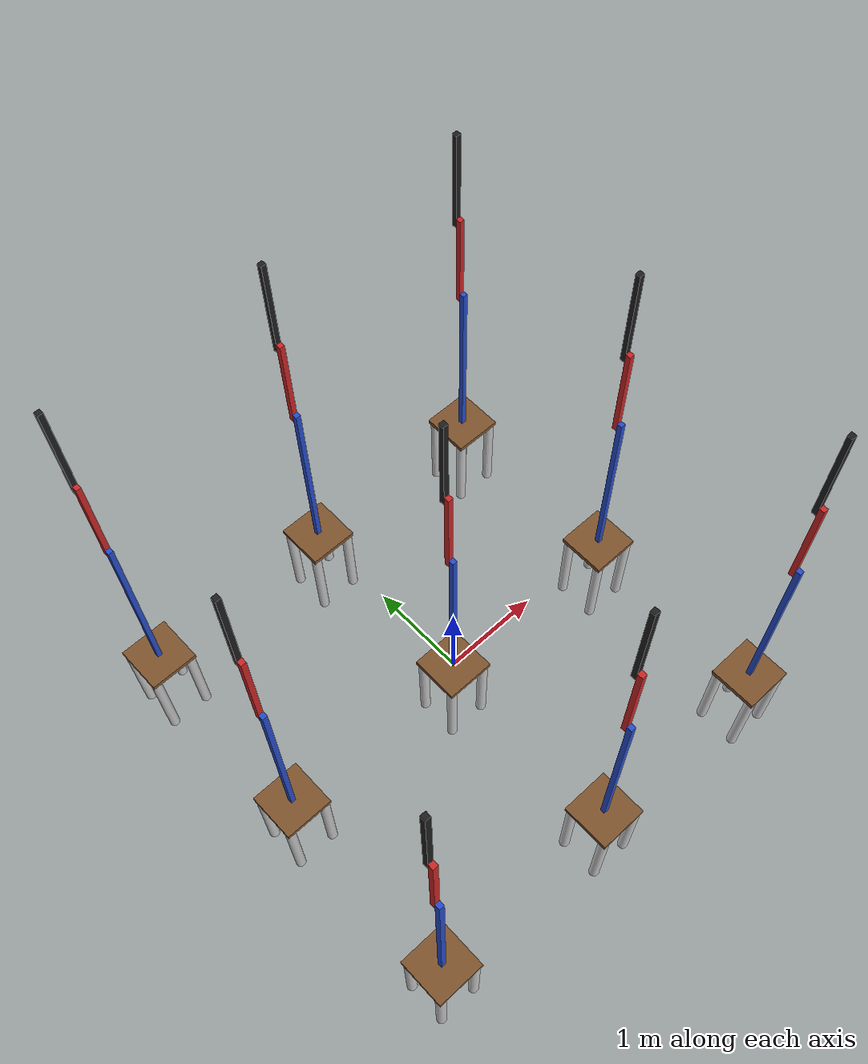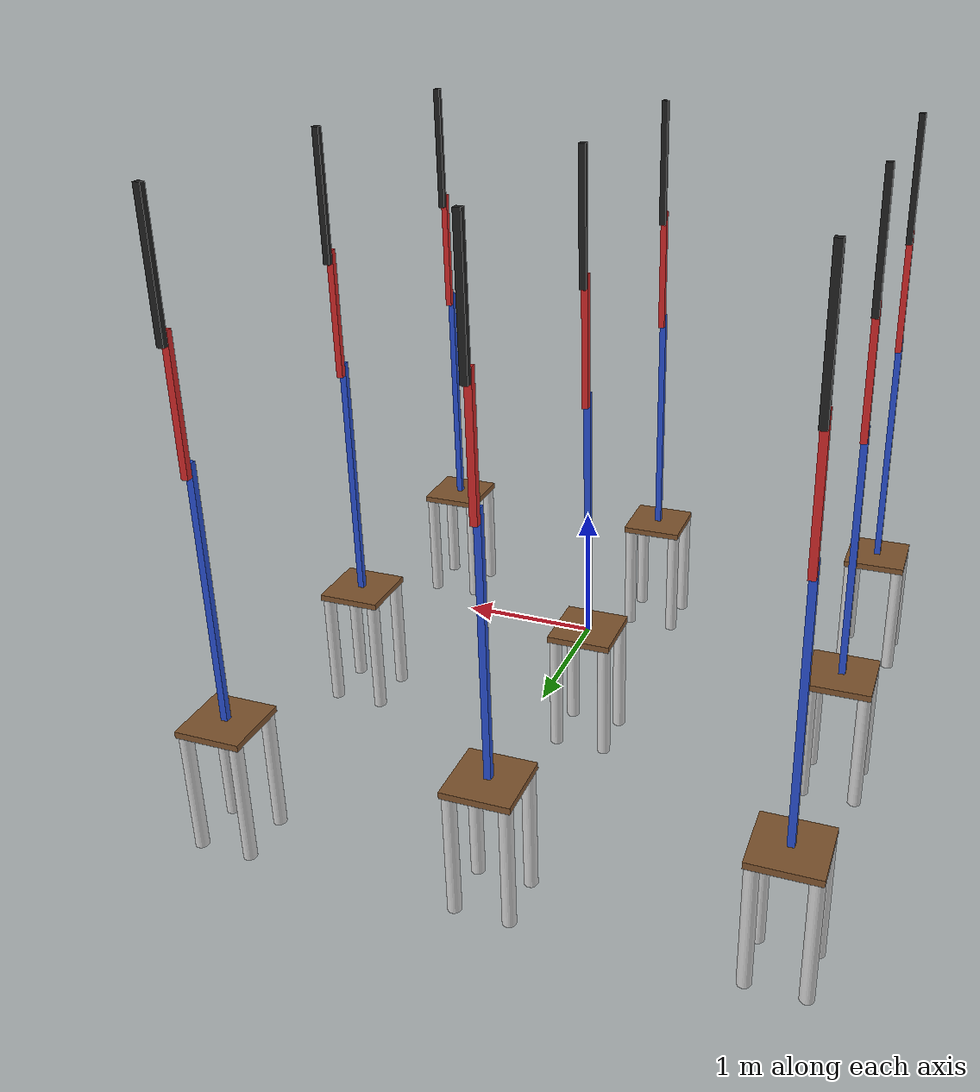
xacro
<?xml version="1.0" encoding="UTF-8"?>
<robot xmlns:xacro="http://wiki.ros.org/xacro" name="lab">

    <xacro:include filename="rrbot_on_table_macro.urdf.xacro" />
    <xacro:include filename="materials.xacro" />
    <xacro:include filename="table_macro.xacro" />
    <xacro:include filename="rrbot_macro.xacro" />
    <link name="world" />

    <xacro:lab_table prefix="t1" parent="world">
        <origin xyz="2 0 0" rpy="0 0 0" />
    </xacro:lab_table>

    <xacro:lab_table prefix="t2" parent="world">
        <origin xyz="0 2 0" rpy="0 0 0" />
    </xacro:lab_table>

    <xacro:lab_table prefix="t3" parent="world">
        <origin xyz="2 2 0" rpy="0 0 0" />
    </xacro:lab_table>

    <xacro:lab_table prefix="t4" parent="world">
        <origin xyz="0 0 0" rpy="0 0 0" />
    </xacro:lab_table>

    <xacro:lab_table prefix="t5" parent="world">
        <origin xyz="-2 2 0" rpy="0 0 0" />
    </xacro:lab_table>

    <xacro:lab_table prefix="t6" parent="world">
        <origin xyz="-2 0 0" rpy="0 0 0" />
    </xacro:lab_table>

    <xacro:lab_table prefix="t7" parent="world">
        <origin xyz="-2 -2 0" rpy="0 0 0" />
    </xacro:lab_table>

    <xacro:lab_table prefix="t8" parent="world">
        <origin xyz="0 -2 0" rpy="0 0 0" />
    </xacro:lab_table>

    <xacro:lab_table prefix="t9" parent="world">
        <origin xyz="2 -2 0" rpy="0 0 0" />
    </xacro:lab_table>
</robot>

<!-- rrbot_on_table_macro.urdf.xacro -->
<robot xmlns:xacro="http://wiki.ros.org/xacro">

  <xacro:macro name="lab_table" params="prefix parent *origin">

    <xacro:table prefix="${prefix}_table" parent="${parent}">
      <xacro:insert_block name="origin" />
    </xacro:table>

    <xacro:rrbot prefix="${prefix}_rrbot" parent="${prefix}_table_table_top">
      <origin xyz="0 0 0" rpy="0 0 0" />
    </xacro:rrbot>

  </xacro:macro>
</robot>

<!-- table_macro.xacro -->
<robot xmlns:xacro="http://www.ros.org/wiki/xacro">

  <xacro:macro name="table" params="prefix parent *origin">
    <xacro:property name="table_length" value="0.5" />
    <xacro:property name="table_width" value="0.5" />
    <xacro:property name="table_height" value="1.0" />
    <xacro:property name="table_thickness" value="0.05" />
    <xacro:property name="leg_length" value="${table_height - table_thickness}" />
    <xacro:property name="leg_radius" value="0.05" />

    <link name="${prefix}_table_top">
      <visual>
        <origin rpy="0 0 0" xyz="0 0 0" />
        <geometry>
          <box size="${table_length} ${table_width} ${table_thickness}" />
        </geometry>
        <material name="brown" />
      </visual>
    </link>

    <joint name="${prefix}_wtable" type="fixed">
      <xacro:insert_block name="origin" />
      <parent link="${parent}"/>
      <child link="${prefix}_table_top"/>
    </joint>

    <link name="${prefix}_leg1">
      <visual>
        <origin rpy="0 0 0" xyz="0 0 0.5" />
        <geometry>
          <cylinder radius="${leg_radius}" length="${leg_length}"/>
        </geometry>
        <material name="light_grey" />
      </visual>
    </link>

    <!-- joint from "world" to "base_link"-->
    <joint name="${prefix}_w00" type="fixed">
      <origin rpy="0 0 0" xyz="${table_length/2 - leg_radius} ${table_width/2 - leg_radius} -${table_height}" />
      <parent link="${prefix}_table_top" />
      <child link="${prefix}_leg1" />
    </joint>

    <link name="${prefix}_leg3">
      <visual>
        <origin rpy="0 0 0" xyz="0 0 0.5" />
        <geometry>
          <cylinder radius="${leg_radius}" length="${leg_length}"/>
        </geometry>
        <material name="light_grey" />
      </visual>
    </link>

    <!-- joint from "world" to "base_link"-->
    <joint name="${prefix}_w10" type="fixed">
      <origin rpy="0 0 0" xyz="-${table_length/2 - leg_radius} ${table_width/2 - leg_radius} -${table_height}" />
      <parent link="${prefix}_table_top" />
      <child link="${prefix}_leg3" />
    </joint>

    <link name="${prefix}_leg2">
      <visual>
        <origin rpy="0 0 0" xyz="0 0 0.5" />
        <geometry>
          <cylinder radius="${leg_radius}" length="${leg_length}"/>
        </geometry>
        <material name="light_grey" />
      </visual>
    </link>

    <!-- joint from "world" to "base_link"-->
    <joint name="${prefix}_w01" type="fixed">
      <origin rpy="0 0 0" xyz="${table_length/2 - leg_radius} -${table_width/2 - leg_radius} -${table_height}" />
      <parent link="${prefix}_table_top" />
      <child link="${prefix}_leg2" />
    </joint>

    <link name="${prefix}_leg4">
      <visual>
        <origin rpy="0 0 0" xyz="0 0 0.5" />
        <geometry>
          <cylinder radius="${leg_radius}" length="${leg_length}"/>
        </geometry>
        <material name="light_grey" />
      </visual>
    </link>

    <!-- joint from "world" to "base_link"-->
    <joint name="${prefix}_w11" type="fixed">
      <origin rpy="0 0 0" xyz="-${table_length/2 - leg_radius} -${table_width/2 - leg_radius} -${table_height}"/>
      <parent link="${prefix}_table_top" />
      <child link="${prefix}_leg4" />
    </joint>

  </xacro:macro>

</robot>

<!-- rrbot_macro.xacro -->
<robot xmlns:xacro="http://www.ros.org/wiki/xacro">

  <xacro:macro name="rrbot" params="prefix parent *origin">

    <!-- Constants for robot dimensions -->
    <xacro:property name="width" value="0.05" /> <!-- Square dimensions (widthxwidth) of beams -->
    <xacro:property name="height0" value="2" /> <!-- base_link -->
    <xacro:property name="height1" value="1" /> <!-- link1 -->
    <xacro:property name="height2" value="1" /> <!-- link2 -->
    <xacro:property name="axel_offset" value="0.05" /> <!-- Space between top of beam and each joint -->

    <joint name="${prefix}_base_joint" type="fixed">
      <xacro:insert_block name="origin" />
      <parent link="${parent}" />
      <child link="${prefix}_base_link" />
    </joint>

    <!-- Base Link -->
    <link name="${prefix}_base_link">
      <visual>
        <origin xyz="0 0 ${height0/2}" rpy="0 0 0"/>
        <geometry>
          <box size="${width} ${width} ${height0}"/>
        </geometry>
        <material name="blue"/>
      </visual>
    </link>

    <joint name="${prefix}_joint1" type="continuous">
      <parent link="${prefix}_base_link" />
      <child link="${prefix}_link1" />
      <origin xyz="0 ${width} ${height0 - axel_offset}" rpy="0 0 0" />
      <axis xyz="0 1 0" />
    </joint>

    <!-- Middle Link -->
    <link name="${prefix}_link1">
      <visual>
        <origin xyz="0 0 ${height1/2 - axel_offset}" rpy="0 0 0" />
        <geometry>
          <box size="${width} ${width} ${height1}" />
        </geometry>
        <material name="red" />
      </visual>
    </link>

    <joint name="${prefix}_joint2" type="continuous">
      <parent link="${prefix}_link1" />
      <child link="${prefix}_link2" />
      <origin xyz="0 ${width} ${height1 - axel_offset*2}" rpy="0 0 0" />
      <axis xyz="0 1 0" />
    </joint>

    <!-- Top Link -->
    <link name="${prefix}_link2">
      <visual>
        <origin xyz="0 0 ${height2/2 - axel_offset}" rpy="0 0 0" />
        <geometry>
          <box size="${width} ${width} ${height2}" />
        </geometry>
        <material name="black" />
      </visual>
    </link>

    <joint name="${prefix}_tool_joint" type="fixed">
      <origin xyz="0 0 ${height2-axel_offset}" rpy="0 0 0" />
      <parent link="${prefix}_link2" />
      <child link="${prefix}_tool0" />
    </joint>

    <!-- Tool Link -->
    <link name="${prefix}_tool0"/>

  </xacro:macro>

</robot>
